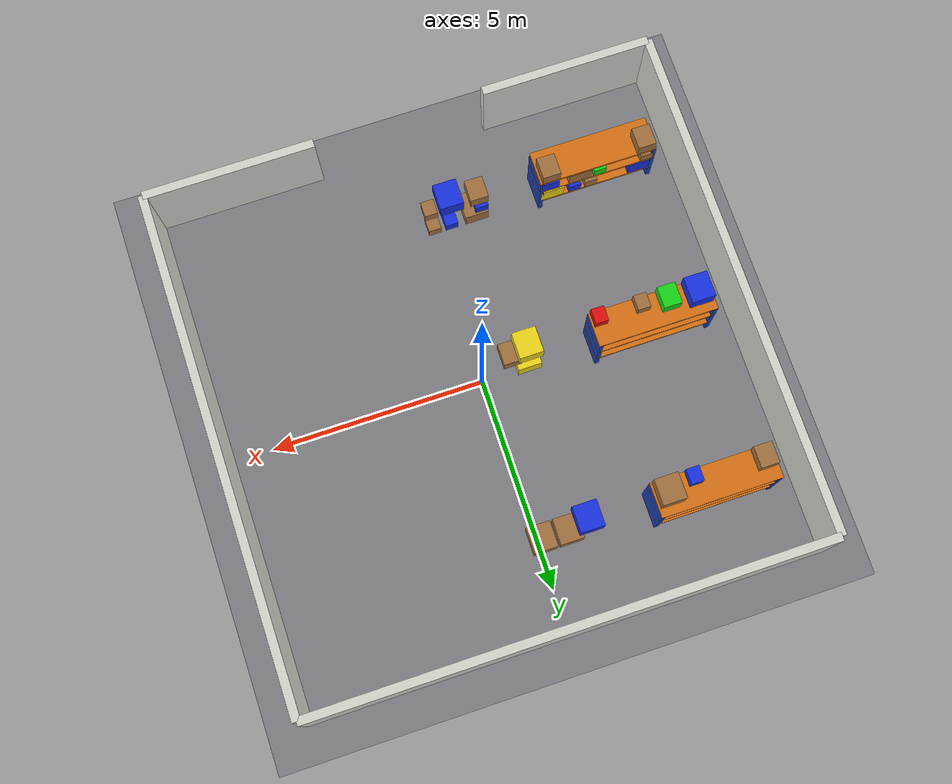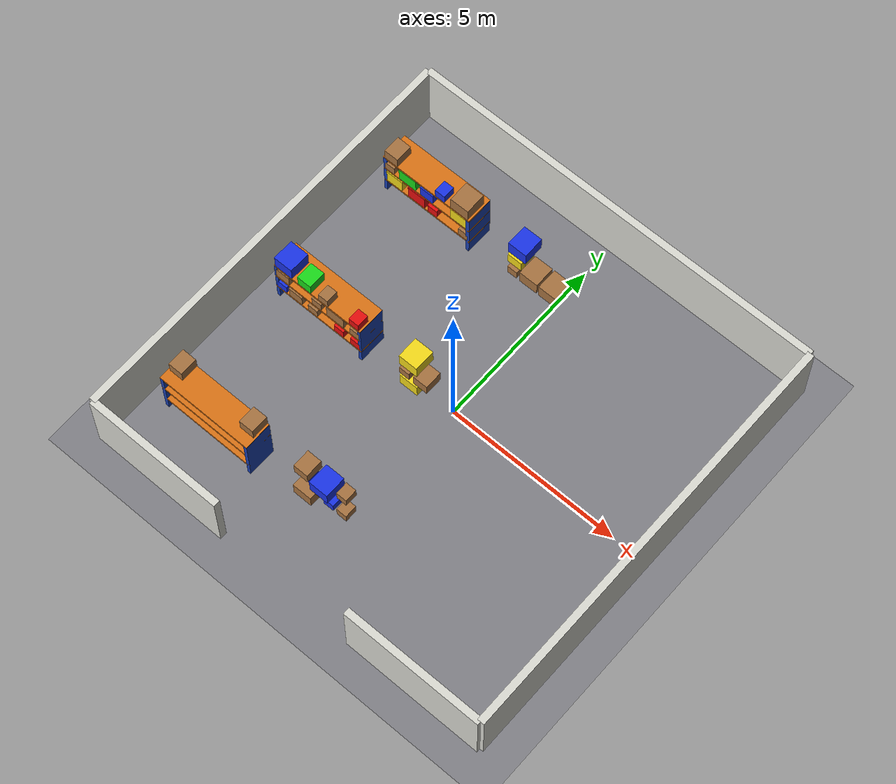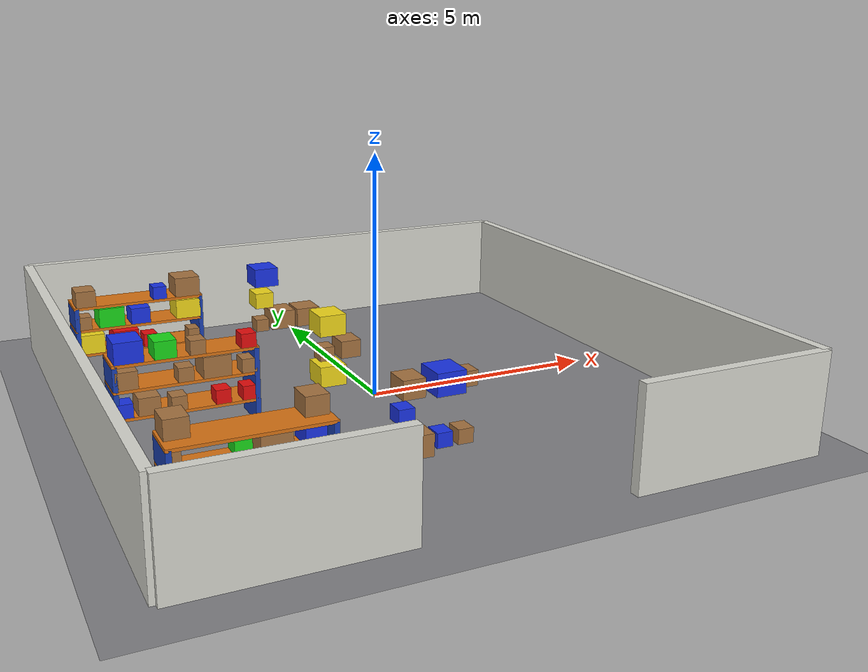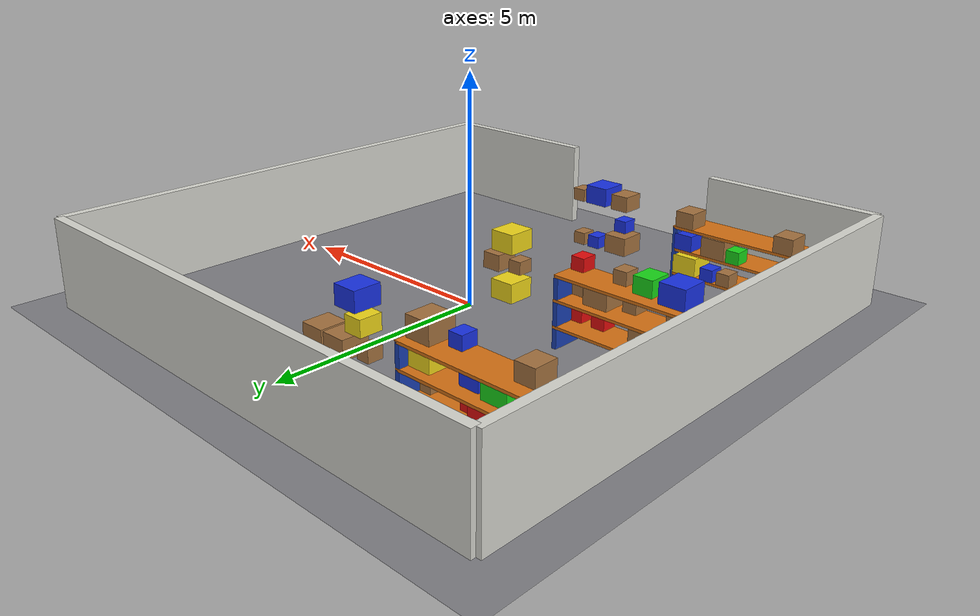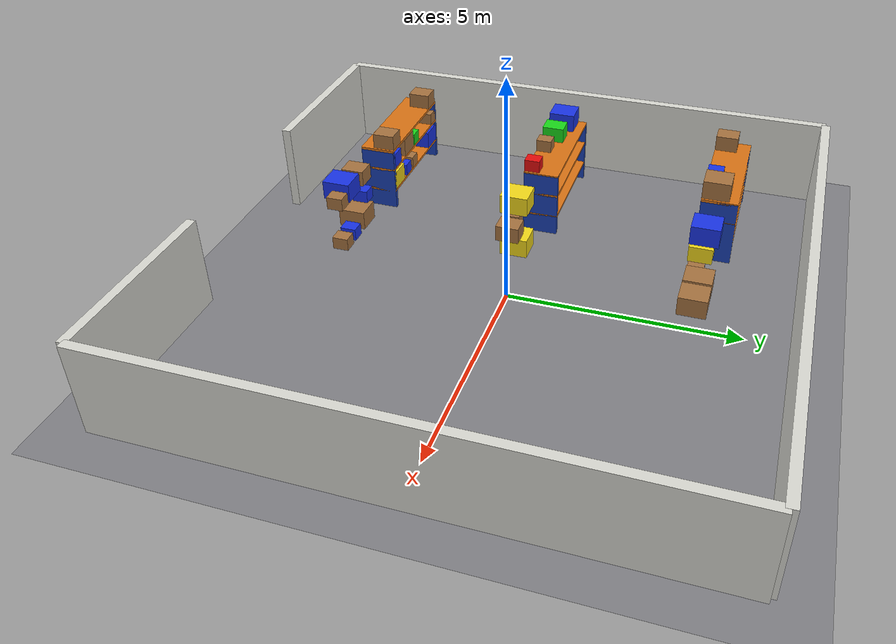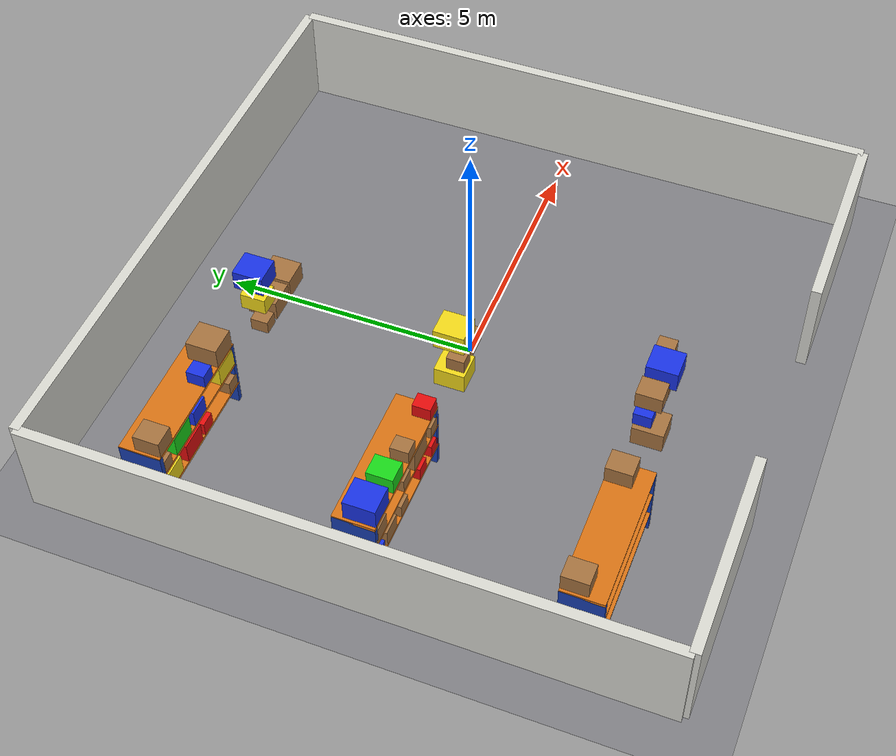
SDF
<sdf version="1.8">
 <world name="default">
  <model name="zemin">
   <static>true</static>
   <link name="link">
    <collision name="collision">
     <geometry><plane><normal>0 0 1</normal><size>20 20</size></plane></geometry>
    </collision>
    <visual name="visual">
     <geometry><plane><normal>0 0 1</normal><size>20 20</size></plane></geometry>
     <material><ambient>0.4 0.4 0.42 1</ambient><diffuse>0.5 0.5 0.52 1</diffuse></material>
    </visual>
   </link>
  </model>
  <model name="duvarlar">
   <static>true</static>
   <link name="link">
    <collision name="kuzey_c">
     <pose>0 6 1 0 0 0</pose>
     <geometry><box><size>12 0.2 2</size></box></geometry>
    </collision>
    <visual name="kuzey_v">
     <pose>0 6 1 0 0 0</pose>
     <geometry><box><size>12 0.2 2</size></box></geometry>
     <material><ambient>0.75 0.75 0.72 1</ambient><diffuse>0.85 0.85 0.82 1</diffuse></material>
    </visual>
    <collision name="guney_sol_c">
     <pose>-4 -6 1 0 0 0</pose>
     <geometry><box><size>4 0.2 2</size></box></geometry>
    </collision>
    <visual name="guney_sol_v">
     <pose>-4 -6 1 0 0 0</pose>
     <geometry><box><size>4 0.2 2</size></box></geometry>
     <material><ambient>0.75 0.75 0.72 1</ambient><diffuse>0.85 0.85 0.82 1</diffuse></material>
    </visual>
    <collision name="guney_sag_c">
     <pose>4 -6 1 0 0 0</pose>
     <geometry><box><size>4 0.2 2</size></box></geometry>
    </collision>
    <visual name="guney_sag_v">
     <pose>4 -6 1 0 0 0</pose>
     <geometry><box><size>4 0.2 2</size></box></geometry>
     <material><ambient>0.75 0.75 0.72 1</ambient><diffuse>0.85 0.85 0.82 1</diffuse></material>
    </visual>
    <collision name="dogu_c">
     <pose>6 0 1 0 0 0</pose>
     <geometry><box><size>0.2 12 2</size></box></geometry>
    </collision>
    <visual name="dogu_v">
     <pose>6 0 1 0 0 0</pose>
     <geometry><box><size>0.2 12 2</size></box></geometry>
     <material><ambient>0.75 0.75 0.72 1</ambient><diffuse>0.85 0.85 0.82 1</diffuse></material>
    </visual>
    <collision name="bati_c">
     <pose>-6 0 1 0 0 0</pose>
     <geometry><box><size>0.2 12 2</size></box></geometry>
    </collision>
    <visual name="bati_v">
     <pose>-6 0 1 0 0 0</pose>
     <geometry><box><size>0.2 12 2</size></box></geometry>
     <material><ambient>0.75 0.75 0.72 1</ambient><diffuse>0.85 0.85 0.82 1</diffuse></material>
    </visual>
   </link>
  </model>
  <model name="raf_A1">
   <static>true</static>
   <pose>-4 4 0 0 0 0</pose>
   <link name="link">
    <collision name="c">
     <pose>0 0 0.75 0 0 0</pose>
     <geometry><box><size>2.8 0.8 1.5</size></box></geometry>
    </collision>
    <visual name="lidar_dolgu">
     <pose>0 0 0.75 0 0 0</pose>
     <geometry><box><size>2.8 0.8 1.5</size></box></geometry>
     <transparency>1</transparency>
     <cast_shadows>false</cast_shadows>
    </visual>
    <visual name="dikey_sol">
     <pose>-1.35 0 0.75 0 0 0</pose>
     <geometry><box><size>0.1 0.8 1.5</size></box></geometry>
     <material><ambient>0.05 0.15 0.5 1</ambient><diffuse>0.1 0.25 0.7 1</diffuse></material>
    </visual>
    <visual name="dikey_sag">
     <pose>1.35 0 0.75 0 0 0</pose>
     <geometry><box><size>0.1 0.8 1.5</size></box></geometry>
     <material><ambient>0.05 0.15 0.5 1</ambient><diffuse>0.1 0.25 0.7 1</diffuse></material>
    </visual>
    <visual name="kat_1">
     <pose>0 0 0.45 0 0 0</pose>
     <geometry><box><size>2.8 0.8 0.06</size></box></geometry>
     <material><ambient>0.6 0.3 0.05 1</ambient><diffuse>0.85 0.45 0.08 1</diffuse></material>
    </visual>
    <visual name="kat_2">
     <pose>0 0 1.0 0 0 0</pose>
     <geometry><box><size>2.8 0.8 0.06</size></box></geometry>
     <material><ambient>0.6 0.3 0.05 1</ambient><diffuse>0.85 0.45 0.08 1</diffuse></material>
    </visual>
    <visual name="kat_3">
     <pose>0 0 1.5 0 0 0</pose>
     <geometry><box><size>2.8 0.8 0.06</size></box></geometry>
     <material><ambient>0.6 0.3 0.05 1</ambient><diffuse>0.85 0.45 0.08 1</diffuse></material>
    </visual>
   </link>
  </model>
  <model name="raf_B1">
   <static>true</static>
   <pose>-4 0 0 0 0 0</pose>
   <link name="link">
    <collision name="c">
     <pose>0 0 0.75 0 0 0</pose>
     <geometry><box><size>2.8 0.8 1.5</size></box></geometry>
    </collision>
    <visual name="lidar_dolgu">
     <pose>0 0 0.75 0 0 0</pose>
     <geometry><box><size>2.8 0.8 1.5</size></box></geometry>
     <transparency>1</transparency>
     <cast_shadows>false</cast_shadows>
    </visual>
    <visual name="dikey_sol">
     <pose>-1.35 0 0.75 0 0 0</pose>
     <geometry><box><size>0.1 0.8 1.5</size></box></geometry>
     <material><ambient>0.05 0.15 0.5 1</ambient><diffuse>0.1 0.25 0.7 1</diffuse></material>
    </visual>
    <visual name="dikey_sag">
     <pose>1.35 0 0.75 0 0 0</pose>
     <geometry><box><size>0.1 0.8 1.5</size></box></geometry>
     <material><ambient>0.05 0.15 0.5 1</ambient><diffuse>0.1 0.25 0.7 1</diffuse></material>
    </visual>
    <visual name="kat_1">
     <pose>0 0 0.45 0 0 0</pose>
     <geometry><box><size>2.8 0.8 0.06</size></box></geometry>
     <material><ambient>0.6 0.3 0.05 1</ambient><diffuse>0.85 0.45 0.08 1</diffuse></material>
    </visual>
    <visual name="kat_2">
     <pose>0 0 1.0 0 0 0</pose>
     <geometry><box><size>2.8 0.8 0.06</size></box></geometry>
     <material><ambient>0.6 0.3 0.05 1</ambient><diffuse>0.85 0.45 0.08 1</diffuse></material>
    </visual>
    <visual name="kat_3">
     <pose>0 0 1.5 0 0 0</pose>
     <geometry><box><size>2.8 0.8 0.06</size></box></geometry>
     <material><ambient>0.6 0.3 0.05 1</ambient><diffuse>0.85 0.45 0.08 1</diffuse></material>
    </visual>
   </link>
  </model>
  <model name="raf_C1">
   <static>true</static>
   <pose>-4 -4 0 0 0 0</pose>
   <link name="link">
    <collision name="c">
     <pose>0 0 0.75 0 0 0</pose>
     <geometry><box><size>2.8 0.8 1.5</size></box></geometry>
    </collision>
    <visual name="lidar_dolgu">
     <pose>0 0 0.75 0 0 0</pose>
     <geometry><box><size>2.8 0.8 1.5</size></box></geometry>
     <transparency>1</transparency>
     <cast_shadows>false</cast_shadows>
    </visual>
    <visual name="dikey_sol">
     <pose>-1.35 0 0.75 0 0 0</pose>
     <geometry><box><size>0.1 0.8 1.5</size></box></geometry>
     <material><ambient>0.05 0.15 0.5 1</ambient><diffuse>0.1 0.25 0.7 1</diffuse></material>
    </visual>
    <visual name="dikey_sag">
     <pose>1.35 0 0.75 0 0 0</pose>
     <geometry><box><size>0.1 0.8 1.5</size></box></geometry>
     <material><ambient>0.05 0.15 0.5 1</ambient><diffuse>0.1 0.25 0.7 1</diffuse></material>
    </visual>
    <visual name="kat_1">
     <pose>0 0 0.45 0 0 0</pose>
     <geometry><box><size>2.8 0.8 0.06</size></box></geometry>
     <material><ambient>0.6 0.3 0.05 1</ambient><diffuse>0.85 0.45 0.08 1</diffuse></material>
    </visual>
    <visual name="kat_2">
     <pose>0 0 1.0 0 0 0</pose>
     <geometry><box><size>2.8 0.8 0.06</size></box></geometry>
     <material><ambient>0.6 0.3 0.05 1</ambient><diffuse>0.85 0.45 0.08 1</diffuse></material>
    </visual>
    <visual name="kat_3">
     <pose>0 0 1.5 0 0 0</pose>
     <geometry><box><size>2.8 0.8 0.06</size></box></geometry>
     <material><ambient>0.6 0.3 0.05 1</ambient><diffuse>0.85 0.45 0.08 1</diffuse></material>
    </visual>
   </link>
  </model>
  <model name="kutu_A1_k1_p1">
   <static>true</static>
   <pose>-5.075 3.900 0.690 0 0 0</pose>
   <link name="link">
    <collision name="c"><geometry><box><size>0.55 0.60 0.42</size></box></geometry></collision>
    <visual name="v">
     <geometry><box><size>0.55 0.60 0.42</size></box></geometry>
     <material>
      <ambient>0.7 0.6 0.05 1</ambient>
      <diffuse>0.95 0.85 0.1 1</diffuse>
      <specular>0.1 0.1 0.1 1</specular>
     </material>
    </visual>
   </link>
  </model>
  <model name="kutu_A1_k1_p2">
   <static>true</static>
   <pose>-4.327 3.900 0.690 0 0 0</pose>
   <link name="link">
    <collision name="c"><geometry><box><size>0.55 0.60 0.42</size></box></geometry></collision>
    <visual name="v">
     <geometry><box><size>0.55 0.60 0.42</size></box></geometry>
     <material>
      <ambient>0.6 0.02 0.02 1</ambient>
      <diffuse>0.9 0.05 0.05 1</diffuse>
      <specular>0.1 0.1 0.1 1</specular>
     </material>
    </visual>
   </link>
  </model>
  <model name="kutu_A1_k1_p3">
   <static>true</static>
   <pose>-3.807 3.775 0.620 0 0 0</pose>
   <link name="link">
    <collision name="c"><geometry><box><size>0.30 0.35 0.28</size></box></geometry></collision>
    <visual name="v">
     <geometry><box><size>0.30 0.35 0.28</size></box></geometry>
     <material>
      <ambient>0.6 0.02 0.02 1</ambient>
      <diffuse>0.9 0.05 0.05 1</diffuse>
      <specular>0.1 0.1 0.1 1</specular>
     </material>
    </visual>
   </link>
  </model>
  <model name="kutu_A1_k1_p4">
   <static>true</static>
   <pose>-2.800 3.775 0.620 0 0 0</pose>
   <link name="link">
    <collision name="c"><geometry><box><size>0.30 0.35 0.28</size></box></geometry></collision>
    <visual name="v">
     <geometry><box><size>0.30 0.35 0.28</size></box></geometry>
     <material>
      <ambient>0.4 0.28 0.15 1</ambient>
      <diffuse>0.65 0.45 0.25 1</diffuse>
      <specular>0.1 0.1 0.1 1</specular>
     </material>
    </visual>
   </link>
  </model>
  <model name="kutu_A1_k2_p1">
   <static>true</static>
   <pose>-5.200 3.775 1.170 0 0 0</pose>
   <link name="link">
    <collision name="c"><geometry><box><size>0.30 0.35 0.28</size></box></geometry></collision>
    <visual name="v">
     <geometry><box><size>0.30 0.35 0.28</size></box></geometry>
     <material>
      <ambient>0.4 0.28 0.15 1</ambient>
      <diffuse>0.65 0.45 0.25 1</diffuse>
      <specular>0.1 0.1 0.1 1</specular>
     </material>
    </visual>
   </link>
  </model>
  <model name="kutu_A1_k2_p2">
   <static>true</static>
   <pose>-4.616 3.900 1.240 0 0 0</pose>
   <link name="link">
    <collision name="c"><geometry><box><size>0.55 0.60 0.42</size></box></geometry></collision>
    <visual name="v">
     <geometry><box><size>0.55 0.60 0.42</size></box></geometry>
     <material>
      <ambient>0.05 0.5 0.05 1</ambient>
      <diffuse>0.1 0.85 0.1 1</diffuse>
      <specular>0.1 0.1 0.1 1</specular>
     </material>
    </visual>
   </link>
  </model>
  <model name="kutu_A1_k2_p3">
   <static>true</static>
   <pose>-3.991 3.850 1.205 0 0 0</pose>
   <link name="link">
    <collision name="c"><geometry><box><size>0.42 0.50 0.35</size></box></geometry></collision>
    <visual name="v">
     <geometry><box><size>0.42 0.50 0.35</size></box></geometry>
     <material>
      <ambient>0.05 0.1 0.6 1</ambient>
      <diffuse>0.1 0.2 0.9 1</diffuse>
      <specular>0.1 0.1 0.1 1</specular>
     </material>
    </visual>
   </link>
  </model>
  <model name="kutu_A1_k2_p4">
   <static>true</static>
   <pose>-2.925 3.900 1.240 0 0 0</pose>
   <link name="link">
    <collision name="c"><geometry><box><size>0.55 0.60 0.42</size></box></geometry></collision>
    <visual name="v">
     <geometry><box><size>0.55 0.60 0.42</size></box></geometry>
     <material>
      <ambient>0.7 0.6 0.05 1</ambient>
      <diffuse>0.95 0.85 0.1 1</diffuse>
      <specular>0.1 0.1 0.1 1</specular>
     </material>
    </visual>
   </link>
  </model>
  <model name="kutu_A1_k3_p1">
   <static>true</static>
   <pose>-5.140 3.850 1.705 0 0 0</pose>
   <link name="link">
    <collision name="c"><geometry><box><size>0.42 0.50 0.35</size></box></geometry></collision>
    <visual name="v">
     <geometry><box><size>0.42 0.50 0.35</size></box></geometry>
     <material>
      <ambient>0.4 0.28 0.15 1</ambient>
      <diffuse>0.65 0.45 0.25 1</diffuse>
      <specular>0.1 0.1 0.1 1</specular>
     </material>
    </visual>
   </link>
  </model>
  <model name="kutu_A1_k3_p2">
   <static>true</static>
   <pose>-3.546 3.775 1.670 0 0 0</pose>
   <link name="link">
    <collision name="c"><geometry><box><size>0.30 0.35 0.28</size></box></geometry></collision>
    <visual name="v">
     <geometry><box><size>0.30 0.35 0.28</size></box></geometry>
     <material>
      <ambient>0.05 0.1 0.6 1</ambient>
      <diffuse>0.1 0.2 0.9 1</diffuse>
      <specular>0.1 0.1 0.1 1</specular>
     </material>
    </visual>
   </link>
  </model>
  <model name="kutu_A1_k3_p3">
   <static>true</static>
   <pose>-2.925 3.900 1.740 0 0 0</pose>
   <link name="link">
    <collision name="c"><geometry><box><size>0.55 0.60 0.42</size></box></geometry></collision>
    <visual name="v">
     <geometry><box><size>0.55 0.60 0.42</size></box></geometry>
     <material>
      <ambient>0.4 0.28 0.15 1</ambient>
      <diffuse>0.65 0.45 0.25 1</diffuse>
      <specular>0.1 0.1 0.1 1</specular>
     </material>
    </visual>
   </link>
  </model>
  <model name="kutu_A2_k1_p1">
   <static>true</static>
   <pose>-1.200 3.775 0.620 0 0 0</pose>
   <link name="link">
    <collision name="c"><geometry><box><size>0.30 0.35 0.28</size></box></geometry></collision>
    <visual name="v">
     <geometry><box><size>0.30 0.35 0.28</size></box></geometry>
     <material>
      <ambient>0.4 0.28 0.15 1</ambient>
      <diffuse>0.65 0.45 0.25 1</diffuse>
      <specular>0.1 0.1 0.1 1</specular>
     </material>
    </visual>
   </link>
  </model>
  <model name="kutu_A2_k1_p2">
   <static>true</static>
   <pose>-0.687 3.900 0.690 0 0 0</pose>
   <link name="link">
    <collision name="c"><geometry><box><size>0.55 0.60 0.42</size></box></geometry></collision>
    <visual name="v">
     <geometry><box><size>0.55 0.60 0.42</size></box></geometry>
     <material>
      <ambient>0.4 0.28 0.15 1</ambient>
      <diffuse>0.65 0.45 0.25 1</diffuse>
      <specular>0.1 0.1 0.1 1</specular>
     </material>
    </visual>
   </link>
  </model>
  <model name="kutu_A2_k1_p3">
   <static>true</static>
   <pose>-0.077 3.900 0.690 0 0 0</pose>
   <link name="link">
    <collision name="c"><geometry><box><size>0.55 0.60 0.42</size></box></geometry></collision>
    <visual name="v">
     <geometry><box><size>0.55 0.60 0.42</size></box></geometry>
     <material>
      <ambient>0.4 0.28 0.15 1</ambient>
      <diffuse>0.65 0.45 0.25 1</diffuse>
      <specular>0.1 0.1 0.1 1</specular>
     </material>
    </visual>
   </link>
  </model>
  <model name="kutu_A2_k2_p1">
   <static>true</static>
   <pose>-1.140 3.850 1.205 0 0 0</pose>
   <link name="link">
    <collision name="c"><geometry><box><size>0.42 0.50 0.35</size></box></geometry></collision>
    <visual name="v">
     <geometry><box><size>0.42 0.50 0.35</size></box></geometry>
     <material>
      <ambient>0.7 0.6 0.05 1</ambient>
      <diffuse>0.95 0.85 0.1 1</diffuse>
      <specular>0.1 0.1 0.1 1</specular>
     </material>
    </visual>
   </link>
  </model>
  <model name="kutu_A2_k3_p1">
   <static>true</static>
   <pose>-1.075 3.900 1.740 0 0 0</pose>
   <link name="link">
    <collision name="c"><geometry><box><size>0.55 0.60 0.42</size></box></geometry></collision>
    <visual name="v">
     <geometry><box><size>0.55 0.60 0.42</size></box></geometry>
     <material>
      <ambient>0.05 0.1 0.6 1</ambient>
      <diffuse>0.1 0.2 0.9 1</diffuse>
      <specular>0.1 0.1 0.1 1</specular>
     </material>
    </visual>
   </link>
  </model>
  <model name="kutu_B1_k1_p1">
   <static>true</static>
   <pose>-5.200 -0.225 0.620 0 0 0</pose>
   <link name="link">
    <collision name="c"><geometry><box><size>0.30 0.35 0.28</size></box></geometry></collision>
    <visual name="v">
     <geometry><box><size>0.30 0.35 0.28</size></box></geometry>
     <material>
      <ambient>0.05 0.1 0.6 1</ambient>
      <diffuse>0.1 0.2 0.9 1</diffuse>
      <specular>0.1 0.1 0.1 1</specular>
     </material>
    </visual>
   </link>
  </model>
  <model name="kutu_B1_k1_p2">
   <static>true</static>
   <pose>-4.750 -0.150 0.655 0 0 0</pose>
   <link name="link">
    <collision name="c"><geometry><box><size>0.42 0.50 0.35</size></box></geometry></collision>
    <visual name="v">
     <geometry><box><size>0.42 0.50 0.35</size></box></geometry>
     <material>
      <ambient>0.4 0.28 0.15 1</ambient>
      <diffuse>0.65 0.45 0.25 1</diffuse>
      <specular>0.1 0.1 0.1 1</specular>
     </material>
    </visual>
   </link>
  </model>
  <model name="kutu_B1_k1_p3">
   <static>true</static>
   <pose>-4.188 -0.225 0.620 0 0 0</pose>
   <link name="link">
    <collision name="c"><geometry><box><size>0.30 0.35 0.28</size></box></geometry></collision>
    <visual name="v">
     <geometry><box><size>0.30 0.35 0.28</size></box></geometry>
     <material>
      <ambient>0.4 0.28 0.15 1</ambient>
      <diffuse>0.65 0.45 0.25 1</diffuse>
      <specular>0.1 0.1 0.1 1</specular>
     </material>
    </visual>
   </link>
  </model>
  <model name="kutu_B1_k1_p4">
   <static>true</static>
   <pose>-3.334 -0.225 0.620 0 0 0</pose>
   <link name="link">
    <collision name="c"><geometry><box><size>0.30 0.35 0.28</size></box></geometry></collision>
    <visual name="v">
     <geometry><box><size>0.30 0.35 0.28</size></box></geometry>
     <material>
      <ambient>0.6 0.02 0.02 1</ambient>
      <diffuse>0.9 0.05 0.05 1</diffuse>
      <specular>0.1 0.1 0.1 1</specular>
     </material>
    </visual>
   </link>
  </model>
  <model name="kutu_B1_k1_p5">
   <static>true</static>
   <pose>-2.800 -0.225 0.620 0 0 0</pose>
   <link name="link">
    <collision name="c"><geometry><box><size>0.30 0.35 0.28</size></box></geometry></collision>
    <visual name="v">
     <geometry><box><size>0.30 0.35 0.28</size></box></geometry>
     <material>
      <ambient>0.6 0.02 0.02 1</ambient>
      <diffuse>0.9 0.05 0.05 1</diffuse>
      <specular>0.1 0.1 0.1 1</specular>
     </material>
    </visual>
   </link>
  </model>
  <model name="kutu_B1_k2_p1">
   <static>true</static>
   <pose>-5.140 -0.150 1.205 0 0 0</pose>
   <link name="link">
    <collision name="c"><geometry><box><size>0.42 0.50 0.35</size></box></geometry></collision>
    <visual name="v">
     <geometry><box><size>0.42 0.50 0.35</size></box></geometry>
     <material>
      <ambient>0.4 0.28 0.15 1</ambient>
      <diffuse>0.65 0.45 0.25 1</diffuse>
      <specular>0.1 0.1 0.1 1</specular>
     </material>
    </visual>
   </link>
  </model>
  <model name="kutu_B1_k2_p2">
   <static>true</static>
   <pose>-4.035 -0.225 1.170 0 0 0</pose>
   <link name="link">
    <collision name="c"><geometry><box><size>0.30 0.35 0.28</size></box></geometry></collision>
    <visual name="v">
     <geometry><box><size>0.30 0.35 0.28</size></box></geometry>
     <material>
      <ambient>0.4 0.28 0.15 1</ambient>
      <diffuse>0.65 0.45 0.25 1</diffuse>
      <specular>0.1 0.1 0.1 1</specular>
     </material>
    </visual>
   </link>
  </model>
  <model name="kutu_B1_k2_p3">
   <static>true</static>
   <pose>-3.428 -0.100 1.240 0 0 0</pose>
   <link name="link">
    <collision name="c"><geometry><box><size>0.55 0.60 0.42</size></box></geometry></collision>
    <visual name="v">
     <geometry><box><size>0.55 0.60 0.42</size></box></geometry>
     <material>
      <ambient>0.4 0.28 0.15 1</ambient>
      <diffuse>0.65 0.45 0.25 1</diffuse>
      <specular>0.1 0.1 0.1 1</specular>
     </material>
    </visual>
   </link>
  </model>
  <model name="kutu_B1_k2_p4">
   <static>true</static>
   <pose>-2.800 -0.225 1.170 0 0 0</pose>
   <link name="link">
    <collision name="c"><geometry><box><size>0.30 0.35 0.28</size></box></geometry></collision>
    <visual name="v">
     <geometry><box><size>0.30 0.35 0.28</size></box></geometry>
     <material>
      <ambient>0.4 0.28 0.15 1</ambient>
      <diffuse>0.65 0.45 0.25 1</diffuse>
      <specular>0.1 0.1 0.1 1</specular>
     </material>
    </visual>
   </link>
  </model>
  <model name="kutu_B1_k3_p1">
   <static>true</static>
   <pose>-5.075 -0.100 1.740 0 0 0</pose>
   <link name="link">
    <collision name="c"><geometry><box><size>0.55 0.60 0.42</size></box></geometry></collision>
    <visual name="v">
     <geometry><box><size>0.55 0.60 0.42</size></box></geometry>
     <material>
      <ambient>0.05 0.1 0.6 1</ambient>
      <diffuse>0.1 0.2 0.9 1</diffuse>
      <specular>0.1 0.1 0.1 1</specular>
     </material>
    </visual>
   </link>
  </model>
  <model name="kutu_B1_k3_p2">
   <static>true</static>
   <pose>-4.397 -0.150 1.705 0 0 0</pose>
   <link name="link">
    <collision name="c"><geometry><box><size>0.42 0.50 0.35</size></box></geometry></collision>
    <visual name="v">
     <geometry><box><size>0.42 0.50 0.35</size></box></geometry>
     <material>
      <ambient>0.05 0.5 0.05 1</ambient>
      <diffuse>0.1 0.85 0.1 1</diffuse>
      <specular>0.1 0.1 0.1 1</specular>
     </material>
    </visual>
   </link>
  </model>
  <model name="kutu_B1_k3_p3">
   <static>true</static>
   <pose>-3.788 -0.225 1.670 0 0 0</pose>
   <link name="link">
    <collision name="c"><geometry><box><size>0.30 0.35 0.28</size></box></geometry></collision>
    <visual name="v">
     <geometry><box><size>0.30 0.35 0.28</size></box></geometry>
     <material>
      <ambient>0.4 0.28 0.15 1</ambient>
      <diffuse>0.65 0.45 0.25 1</diffuse>
      <specular>0.1 0.1 0.1 1</specular>
     </material>
    </visual>
   </link>
  </model>
  <model name="kutu_B1_k3_p4">
   <static>true</static>
   <pose>-2.800 -0.225 1.670 0 0 0</pose>
   <link name="link">
    <collision name="c"><geometry><box><size>0.30 0.35 0.28</size></box></geometry></collision>
    <visual name="v">
     <geometry><box><size>0.30 0.35 0.28</size></box></geometry>
     <material>
      <ambient>0.6 0.02 0.02 1</ambient>
      <diffuse>0.9 0.05 0.05 1</diffuse>
      <specular>0.1 0.1 0.1 1</specular>
     </material>
    </visual>
   </link>
  </model>
  <model name="kutu_B2_k1_p1">
   <static>true</static>
   <pose>-1.075 -0.100 0.690 0 0 0</pose>
   <link name="link">
    <collision name="c"><geometry><box><size>0.55 0.60 0.42</size></box></geometry></collision>
    <visual name="v">
     <geometry><box><size>0.55 0.60 0.42</size></box></geometry>
     <material>
      <ambient>0.7 0.6 0.05 1</ambient>
      <diffuse>0.95 0.85 0.1 1</diffuse>
      <specular>0.1 0.1 0.1 1</specular>
     </material>
    </visual>
   </link>
  </model>
  <model name="kutu_B2_k2_p1">
   <static>true</static>
   <pose>-1.200 -0.225 1.170 0 0 0</pose>
   <link name="link">
    <collision name="c"><geometry><box><size>0.30 0.35 0.28</size></box></geometry></collision>
    <visual name="v">
     <geometry><box><size>0.30 0.35 0.28</size></box></geometry>
     <material>
      <ambient>0.4 0.28 0.15 1</ambient>
      <diffuse>0.65 0.45 0.25 1</diffuse>
      <specular>0.1 0.1 0.1 1</specular>
     </material>
    </visual>
   </link>
  </model>
  <model name="kutu_B2_k2_p2">
   <static>true</static>
   <pose>-0.695 -0.150 1.205 0 0 0</pose>
   <link name="link">
    <collision name="c"><geometry><box><size>0.42 0.50 0.35</size></box></geometry></collision>
    <visual name="v">
     <geometry><box><size>0.42 0.50 0.35</size></box></geometry>
     <material>
      <ambient>0.4 0.28 0.15 1</ambient>
      <diffuse>0.65 0.45 0.25 1</diffuse>
      <specular>0.1 0.1 0.1 1</specular>
     </material>
    </visual>
   </link>
  </model>
  <model name="kutu_B2_k3_p1">
   <static>true</static>
   <pose>-1.075 -0.100 1.740 0 0 0</pose>
   <link name="link">
    <collision name="c"><geometry><box><size>0.55 0.60 0.42</size></box></geometry></collision>
    <visual name="v">
     <geometry><box><size>0.55 0.60 0.42</size></box></geometry>
     <material>
      <ambient>0.7 0.6 0.05 1</ambient>
      <diffuse>0.95 0.85 0.1 1</diffuse>
      <specular>0.1 0.1 0.1 1</specular>
     </material>
    </visual>
   </link>
  </model>
  <model name="kutu_C1_k1_p1">
   <static>true</static>
   <pose>-5.075 -3.900 0.690 0 0 0</pose>
   <link name="link">
    <collision name="c"><geometry><box><size>0.55 0.60 0.42</size></box></geometry></collision>
    <visual name="v">
     <geometry><box><size>0.55 0.60 0.42</size></box></geometry>
     <material>
      <ambient>0.05 0.1 0.6 1</ambient>
      <diffuse>0.1 0.2 0.9 1</diffuse>
      <specular>0.1 0.1 0.1 1</specular>
     </material>
    </visual>
   </link>
  </model>
  <model name="kutu_C1_k1_p2">
   <static>true</static>
   <pose>-3.880 -3.775 0.620 0 0 0</pose>
   <link name="link">
    <collision name="c"><geometry><box><size>0.30 0.35 0.28</size></box></geometry></collision>
    <visual name="v">
     <geometry><box><size>0.30 0.35 0.28</size></box></geometry>
     <material>
      <ambient>0.4 0.28 0.15 1</ambient>
      <diffuse>0.65 0.45 0.25 1</diffuse>
      <specular>0.1 0.1 0.1 1</specular>
     </material>
    </visual>
   </link>
  </model>
  <model name="kutu_C1_k1_p3">
   <static>true</static>
   <pose>-3.481 -3.775 0.620 0 0 0</pose>
   <link name="link">
    <collision name="c"><geometry><box><size>0.30 0.35 0.28</size></box></geometry></collision>
    <visual name="v">
     <geometry><box><size>0.30 0.35 0.28</size></box></geometry>
     <material>
      <ambient>0.05 0.1 0.6 1</ambient>
      <diffuse>0.1 0.2 0.9 1</diffuse>
      <specular>0.1 0.1 0.1 1</specular>
     </material>
    </visual>
   </link>
  </model>
  <model name="kutu_C1_k1_p4">
   <static>true</static>
   <pose>-2.925 -3.900 0.690 0 0 0</pose>
   <link name="link">
    <collision name="c"><geometry><box><size>0.55 0.60 0.42</size></box></geometry></collision>
    <visual name="v">
     <geometry><box><size>0.55 0.60 0.42</size></box></geometry>
     <material>
      <ambient>0.7 0.6 0.05 1</ambient>
      <diffuse>0.95 0.85 0.1 1</diffuse>
      <specular>0.1 0.1 0.1 1</specular>
     </material>
    </visual>
   </link>
  </model>
  <model name="kutu_C1_k2_p1">
   <static>true</static>
   <pose>-5.200 -3.775 1.170 0 0 0</pose>
   <link name="link">
    <collision name="c"><geometry><box><size>0.30 0.35 0.28</size></box></geometry></collision>
    <visual name="v">
     <geometry><box><size>0.30 0.35 0.28</size></box></geometry>
     <material>
      <ambient>0.4 0.28 0.15 1</ambient>
      <diffuse>0.65 0.45 0.25 1</diffuse>
      <specular>0.1 0.1 0.1 1</specular>
     </material>
    </visual>
   </link>
  </model>
  <model name="kutu_C1_k2_p2">
   <static>true</static>
   <pose>-4.058 -3.775 1.170 0 0 0</pose>
   <link name="link">
    <collision name="c"><geometry><box><size>0.30 0.35 0.28</size></box></geometry></collision>
    <visual name="v">
     <geometry><box><size>0.30 0.35 0.28</size></box></geometry>
     <material>
      <ambient>0.05 0.5 0.05 1</ambient>
      <diffuse>0.1 0.85 0.1 1</diffuse>
      <specular>0.1 0.1 0.1 1</specular>
     </material>
    </visual>
   </link>
  </model>
  <model name="kutu_C1_k2_p3">
   <static>true</static>
   <pose>-3.581 -3.900 1.240 0 0 0</pose>
   <link name="link">
    <collision name="c"><geometry><box><size>0.55 0.60 0.42</size></box></geometry></collision>
    <visual name="v">
     <geometry><box><size>0.55 0.60 0.42</size></box></geometry>
     <material>
      <ambient>0.4 0.28 0.15 1</ambient>
      <diffuse>0.65 0.45 0.25 1</diffuse>
      <specular>0.1 0.1 0.1 1</specular>
     </material>
    </visual>
   </link>
  </model>
  <model name="kutu_C1_k2_p4">
   <static>true</static>
   <pose>-2.860 -3.850 1.205 0 0 0</pose>
   <link name="link">
    <collision name="c"><geometry><box><size>0.42 0.50 0.35</size></box></geometry></collision>
    <visual name="v">
     <geometry><box><size>0.42 0.50 0.35</size></box></geometry>
     <material>
      <ambient>0.05 0.1 0.6 1</ambient>
      <diffuse>0.1 0.2 0.9 1</diffuse>
      <specular>0.1 0.1 0.1 1</specular>
     </material>
    </visual>
   </link>
  </model>
  <model name="kutu_C1_k3_p1">
   <static>true</static>
   <pose>-5.140 -3.850 1.705 0 0 0</pose>
   <link name="link">
    <collision name="c"><geometry><box><size>0.42 0.50 0.35</size></box></geometry></collision>
    <visual name="v">
     <geometry><box><size>0.42 0.50 0.35</size></box></geometry>
     <material>
      <ambient>0.4 0.28 0.15 1</ambient>
      <diffuse>0.65 0.45 0.25 1</diffuse>
      <specular>0.1 0.1 0.1 1</specular>
     </material>
    </visual>
   </link>
  </model>
  <model name="kutu_C1_k3_p2">
   <static>true</static>
   <pose>-2.860 -3.850 1.705 0 0 0</pose>
   <link name="link">
    <collision name="c"><geometry><box><size>0.42 0.50 0.35</size></box></geometry></collision>
    <visual name="v">
     <geometry><box><size>0.42 0.50 0.35</size></box></geometry>
     <material>
      <ambient>0.4 0.28 0.15 1</ambient>
      <diffuse>0.65 0.45 0.25 1</diffuse>
      <specular>0.1 0.1 0.1 1</specular>
     </material>
    </visual>
   </link>
  </model>
  <model name="kutu_C2_k1_p1">
   <static>true</static>
   <pose>-1.075 -3.900 0.690 0 0 0</pose>
   <link name="link">
    <collision name="c"><geometry><box><size>0.55 0.60 0.42</size></box></geometry></collision>
    <visual name="v">
     <geometry><box><size>0.55 0.60 0.42</size></box></geometry>
     <material>
      <ambient>0.4 0.28 0.15 1</ambient>
      <diffuse>0.65 0.45 0.25 1</diffuse>
      <specular>0.1 0.1 0.1 1</specular>
     </material>
    </visual>
   </link>
  </model>
  <model name="kutu_C2_k1_p2">
   <static>true</static>
   <pose>-0.466 -3.775 0.620 0 0 0</pose>
   <link name="link">
    <collision name="c"><geometry><box><size>0.30 0.35 0.28</size></box></geometry></collision>
    <visual name="v">
     <geometry><box><size>0.30 0.35 0.28</size></box></geometry>
     <material>
      <ambient>0.05 0.1 0.6 1</ambient>
      <diffuse>0.1 0.2 0.9 1</diffuse>
      <specular>0.1 0.1 0.1 1</specular>
     </material>
    </visual>
   </link>
  </model>
  <model name="kutu_C2_k1_p3">
   <static>true</static>
   <pose>-0.057 -3.775 0.620 0 0 0</pose>
   <link name="link">
    <collision name="c"><geometry><box><size>0.30 0.35 0.28</size></box></geometry></collision>
    <visual name="v">
     <geometry><box><size>0.30 0.35 0.28</size></box></geometry>
     <material>
      <ambient>0.4 0.28 0.15 1</ambient>
      <diffuse>0.65 0.45 0.25 1</diffuse>
      <specular>0.1 0.1 0.1 1</specular>
     </material>
    </visual>
   </link>
  </model>
  <model name="kutu_C2_k2_p1">
   <static>true</static>
   <pose>-1.200 -3.775 1.170 0 0 0</pose>
   <link name="link">
    <collision name="c"><geometry><box><size>0.30 0.35 0.28</size></box></geometry></collision>
    <visual name="v">
     <geometry><box><size>0.30 0.35 0.28</size></box></geometry>
     <material>
      <ambient>0.05 0.1 0.6 1</ambient>
      <diffuse>0.1 0.2 0.9 1</diffuse>
      <specular>0.1 0.1 0.1 1</specular>
     </material>
    </visual>
   </link>
  </model>
  <model name="kutu_C2_k3_p1">
   <static>true</static>
   <pose>-1.140 -3.850 1.705 0 0 0</pose>
   <link name="link">
    <collision name="c"><geometry><box><size>0.42 0.50 0.35</size></box></geometry></collision>
    <visual name="v">
     <geometry><box><size>0.42 0.50 0.35</size></box></geometry>
     <material>
      <ambient>0.4 0.28 0.15 1</ambient>
      <diffuse>0.65 0.45 0.25 1</diffuse>
      <specular>0.1 0.1 0.1 1</specular>
     </material>
    </visual>
   </link>
  </model>
  <model name="kutu_C2_k3_p2">
   <static>true</static>
   <pose>-0.493 -3.900 1.740 0 0 0</pose>
   <link name="link">
    <collision name="c"><geometry><box><size>0.55 0.60 0.42</size></box></geometry></collision>
    <visual name="v">
     <geometry><box><size>0.55 0.60 0.42</size></box></geometry>
     <material>
      <ambient>0.05 0.1 0.6 1</ambient>
      <diffuse>0.1 0.2 0.9 1</diffuse>
      <specular>0.1 0.1 0.1 1</specular>
     </material>
    </visual>
   </link>
  </model>
  <model name="kutu_C2_k3_p3">
   <static>true</static>
   <pose>-0.003 -3.775 1.670 0 0 0</pose>
   <link name="link">
    <collision name="c"><geometry><box><size>0.30 0.35 0.28</size></box></geometry></collision>
    <visual name="v">
     <geometry><box><size>0.30 0.35 0.28</size></box></geometry>
     <material>
      <ambient>0.4 0.28 0.15 1</ambient>
      <diffuse>0.65 0.45 0.25 1</diffuse>
      <specular>0.1 0.1 0.1 1</specular>
     </material>
    </visual>
   </link>
  </model>
 </world>
</sdf>
